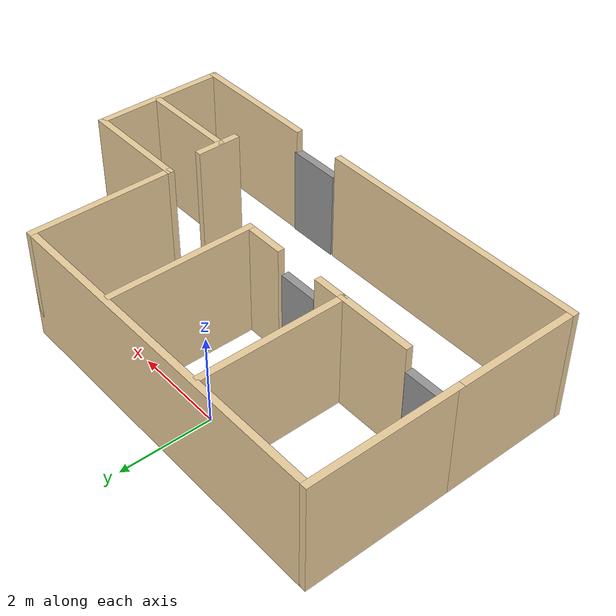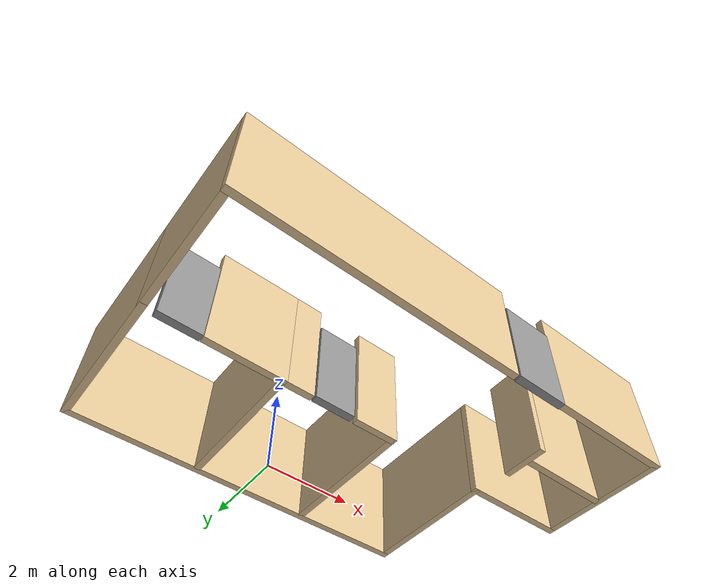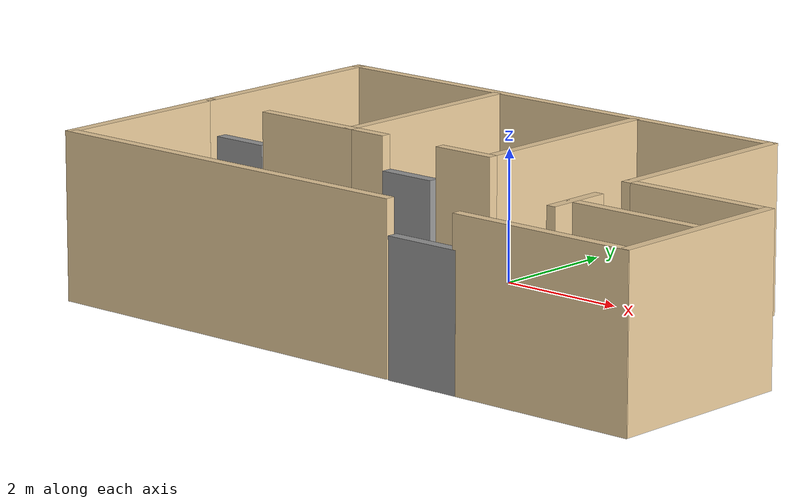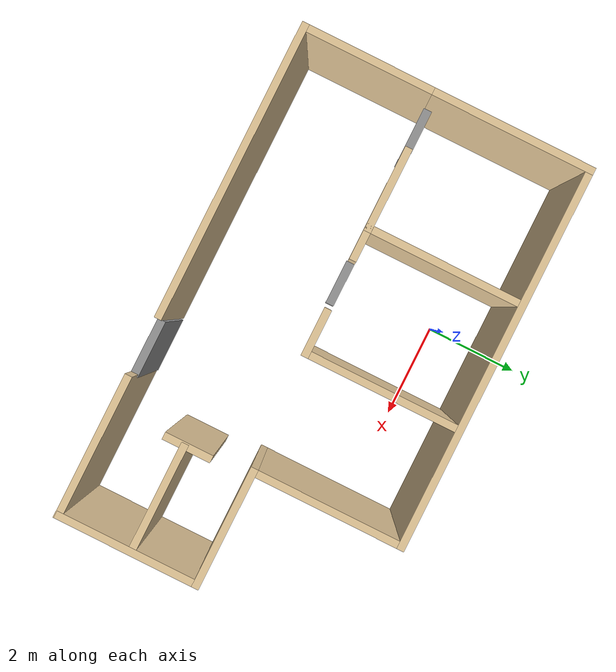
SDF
<?xml version='1.0'?>
<sdf version='1.6'>
  <model name='mybuilding'>
    <pose frame=''>1.17989 -1.95051 0 0 -0 0</pose>
    <link name='Door_0'>
      <collision name='Door_0_Collision'>
        <geometry>
          <box>
            <size>0.9 0.17 2</size>
          </box>
        </geometry>
        <pose frame=''>0 0 1 0 -0 0</pose>
      </collision>
      <visual name='Door_0_Visual'>
        <pose frame=''>0 0 1 0 -0 0</pose>
        <geometry>
          <box>
            <size>0.9 0.17 2</size>
          </box>
        </geometry>
        <material>
          <script>
            <uri>file://media/materials/scripts/gazebo.material</uri>
            <name>Gazebo/Grey</name>
          </script>
        </material>
      </visual>
      <pose frame=''>-4.4187 -0.220499 0 0 -0 0</pose>
    </link>
    <link name='Door_1'>
      <collision name='Door_1_Collision'>
        <geometry>
          <box>
            <size>0.9 0.17 2</size>
          </box>
        </geometry>
        <pose frame=''>0 0 1 0 -0 0</pose>
      </collision>
      <visual name='Door_1_Visual'>
        <pose frame=''>0 0 1 0 -0 0</pose>
        <geometry>
          <box>
            <size>0.9 0.17 2</size>
          </box>
        </geometry>
        <material>
          <script>
            <uri>file://media/materials/scripts/gazebo.material</uri>
            <name>Gazebo/Grey</name>
          </script>
        </material>
      </visual>
      <pose frame=''>-1.13101 -0.236007 0 0 -0 0</pose>
    </link>
    <link name='Door_2'>
      <collision name='Door_2_Collision'>
        <geometry>
          <box>
            <size>1.2 0.17 2</size>
          </box>
        </geometry>
        <pose frame=''>0 0 1 0 -0 0</pose>
      </collision>
      <visual name='Door_2_Visual'>
        <pose frame=''>0 0 1 0 -0 0</pose>
        <geometry>
          <box>
            <size>1.2 0.17 2</size>
          </box>
        </geometry>
        <material>
          <script>
            <uri>file://media/materials/scripts/gazebo.material</uri>
            <name>Gazebo/Grey</name>
          </script>
        </material>
      </visual>
      <pose frame=''>1.62941 -2.98092 0 0 -0 0</pose>
    </link>
    <link name='Wall_1'>
      <collision name='Wall_1_Collision'>
        <geometry>
          <box>
            <size>3.352 0.15 2.5</size>
          </box>
        </geometry>
        <pose frame=''>0 0 1.25 0 -0 0</pose>
      </collision>
      <visual name='Wall_1_Visual'>
        <pose frame=''>0 0 1.25 0 -0 0</pose>
        <geometry>
          <box>
            <size>3.352 0.15 2.5</size>
          </box>
        </geometry>
        <material>
          <script>
            <uri>file://media/materials/scripts/gazebo.material</uri>
            <name>Gazebo/Grey</name>
          </script>
          <ambient>0.921569 0.807843 0.615686 1</ambient>
        </material>
        <meta>
          <layer>0</layer>
        </meta>
      </visual>
      <pose frame=''>-5.0999 1.38951 0 0 -0 1.5708</pose>
    </link>
    <link name='Wall_11'>
      <collision name='Wall_11_Collision'>
        <geometry>
          <box>
            <size>2.5 0.15 2.5</size>
          </box>
        </geometry>
        <pose frame=''>0 0 1.25 0 -0 0</pose>
      </collision>
      <visual name='Wall_11_Visual'>
        <pose frame=''>0 0 1.25 0 -0 0</pose>
        <geometry>
          <box>
            <size>2.5 0.15 2.5</size>
          </box>
        </geometry>
        <material>
          <script>
            <uri>file://media/materials/scripts/gazebo.material</uri>
            <name>Gazebo/Grey</name>
          </script>
          <ambient>0.921569 0.807843 0.615686 1</ambient>
        </material>
        <meta>
          <layer>0</layer>
        </meta>
      </visual>
      <pose frame=''>3.9251 -0.109492 0 0 -0 0</pose>
    </link>
    <link name='Wall_12'>
      <collision name='Wall_12_Collision'>
        <geometry>
          <box>
            <size>3.01551 0.15 2.5</size>
          </box>
        </geometry>
        <pose frame=''>0 0 1.25 0 -0 0</pose>
      </collision>
      <visual name='Wall_12_Visual'>
        <pose frame=''>0 0 1.25 0 -0 0</pose>
        <geometry>
          <box>
            <size>3.01551 0.15 2.5</size>
          </box>
        </geometry>
        <material>
          <script>
            <uri>file://media/materials/scripts/gazebo.material</uri>
            <name>Gazebo/Grey</name>
          </script>
          <ambient>0.921569 0.807843 0.615686 1</ambient>
        </material>
        <meta>
          <layer>0</layer>
        </meta>
      </visual>
      <pose frame=''>5.10011 -1.54225 0 0 0 -1.5708</pose>
    </link>
    <link name='Wall_13'>
      <collision name='Wall_13_Collision'>
        <geometry>
          <box>
            <size>3 0.15 2.5</size>
          </box>
        </geometry>
        <pose frame=''>0 0 1.25 0 -0 0</pose>
      </collision>
      <visual name='Wall_13_Visual'>
        <pose frame=''>0 0 1.25 0 -0 0</pose>
        <geometry>
          <box>
            <size>3 0.15 2.5</size>
          </box>
        </geometry>
        <material>
          <script>
            <uri>file://media/materials/scripts/gazebo.material</uri>
            <name>Gazebo/Grey</name>
          </script>
          <ambient>0.921569 0.807843 0.615686 1</ambient>
        </material>
        <meta>
          <layer>0</layer>
        </meta>
      </visual>
      <pose frame=''>3.6751 -2.99051 0 0 -0 3.14159</pose>
    </link>
    <link name='Wall_15'>
      <collision name='Wall_15_Collision'>
        <geometry>
          <box>
            <size>6.1704 0.15 2.5</size>
          </box>
        </geometry>
        <pose frame=''>0 0 1.25 0 -0 0</pose>
      </collision>
      <visual name='Wall_15_Visual'>
        <pose frame=''>0 0 1.25 0 -0 0</pose>
        <geometry>
          <box>
            <size>6.1704 0.15 2.5</size>
          </box>
        </geometry>
        <material>
          <script>
            <uri>file://media/materials/scripts/gazebo.material</uri>
            <name>Gazebo/Grey</name>
          </script>
          <ambient>0.921569 0.807843 0.615686 1</ambient>
        </material>
        <meta>
          <layer>0</layer>
        </meta>
      </visual>
      <pose frame=''>-2.08989 -2.97999 0 0 -0 3.14143</pose>
    </link>
    <link name='Wall_16'>
      <collision name='Wall_16_Collision'>
        <geometry>
          <box>
            <size>2.917 0.15 2.5</size>
          </box>
        </geometry>
        <pose frame=''>0 0 1.25 0 -0 0</pose>
      </collision>
      <visual name='Wall_16_Visual'>
        <pose frame=''>0 0 1.25 0 -0 0</pose>
        <geometry>
          <box>
            <size>2.917 0.15 2.5</size>
          </box>
        </geometry>
        <material>
          <script>
            <uri>file://media/materials/scripts/gazebo.material</uri>
            <name>Gazebo/Grey</name>
          </script>
          <ambient>0.921569 0.807843 0.615686 1</ambient>
        </material>
        <meta>
          <layer>0</layer>
        </meta>
      </visual>
      <pose frame=''>-5.0999 -1.59549 0 0 -0 1.5708</pose>
    </link>
    <link name='Wall_18'>
      <collision name='Wall_18_Collision'>
        <geometry>
          <box>
            <size>1.75 0.15 2.5</size>
          </box>
        </geometry>
        <pose frame=''>0 0 1.25 0 -0 0</pose>
      </collision>
      <visual name='Wall_18_Visual'>
        <pose frame=''>0 0 1.25 0 -0 0</pose>
        <geometry>
          <box>
            <size>1.75 0.15 2.5</size>
          </box>
        </geometry>
        <material>
          <script>
            <uri>file://media/materials/scripts/gazebo.material</uri>
            <name>Gazebo/Grey</name>
          </script>
          <ambient>0.921569 0.807843 0.615686 1</ambient>
        </material>
        <meta>
          <layer>0</layer>
        </meta>
      </visual>
      <pose frame=''>-3.0799 -0.219492 0 0 -0 3.14159</pose>
    </link>
    <link name='Wall_2'>
      <collision name='Wall_2_Collision'>
        <geometry>
          <box>
            <size>8 0.15 2.5</size>
          </box>
        </geometry>
        <pose frame=''>0 0 1.25 0 -0 0</pose>
      </collision>
      <visual name='Wall_2_Visual'>
        <pose frame=''>0 0 1.25 0 -0 0</pose>
        <geometry>
          <box>
            <size>8 0.15 2.5</size>
          </box>
        </geometry>
        <material>
          <script>
            <uri>file://media/materials/scripts/gazebo.material</uri>
            <name>Gazebo/Grey</name>
          </script>
          <ambient>0.921569 0.807843 0.615686 1</ambient>
        </material>
        <meta>
          <layer>0</layer>
        </meta>
      </visual>
      <pose frame=''>-1.1749 2.99051 0 0 -0 0</pose>
    </link>
    <link name='Wall_24'>
      <collision name='Wall_24_Collision'>
        <geometry>
          <box>
            <size>0.75 0.15 2.5</size>
          </box>
        </geometry>
        <pose frame=''>0 0 1.25 0 -0 0</pose>
      </collision>
      <visual name='Wall_24_Visual'>
        <pose frame=''>0 0 1.25 0 -0 0</pose>
        <geometry>
          <box>
            <size>0.75 0.15 2.5</size>
          </box>
        </geometry>
        <material>
          <script>
            <uri>file://media/materials/scripts/gazebo.material</uri>
            <name>Gazebo/Grey</name>
          </script>
          <ambient>0.921569 0.807843 0.615686 1</ambient>
        </material>
        <meta>
          <layer>0</layer>
        </meta>
      </visual>
      <pose frame=''>-1.97989 -0.219492 0 0 -0 0</pose>
    </link>
    <link name='Wall_27'>
      <collision name='Wall_27_Collision'>
        <geometry>
          <box>
            <size>1 0.15 2.5</size>
          </box>
        </geometry>
        <pose frame=''>0 0 1.25 0 -0 0</pose>
      </collision>
      <visual name='Wall_27_Visual'>
        <pose frame=''>0 0 1.25 0 -0 0</pose>
        <geometry>
          <box>
            <size>1 0.15 2.5</size>
          </box>
        </geometry>
        <material>
          <script>
            <uri>file://media/materials/scripts/gazebo.material</uri>
            <name>Gazebo/Grey</name>
          </script>
          <ambient>0.921569 0.807843 0.615686 1</ambient>
        </material>
        <meta>
          <layer>0</layer>
        </meta>
      </visual>
      <pose frame=''>-0.094895 -0.219492 0 0 -0 0</pose>
    </link>
    <link name='Wall_3'>
      <collision name='Wall_3_Collision'>
        <geometry>
          <box>
            <size>3.25 0.15 2.5</size>
          </box>
        </geometry>
        <pose frame=''>0 0 1.25 0 -0 0</pose>
      </collision>
      <visual name='Wall_3_Visual'>
        <pose frame=''>0 0 1.25 0 -0 0</pose>
        <geometry>
          <box>
            <size>3.25 0.15 2.5</size>
          </box>
        </geometry>
        <material>
          <script>
            <uri>file://media/materials/scripts/gazebo.material</uri>
            <name>Gazebo/Grey</name>
          </script>
          <ambient>0.921569 0.807843 0.615686 1</ambient>
        </material>
        <meta>
          <layer>0</layer>
        </meta>
      </visual>
      <pose frame=''>2.75011 1.44051 0 0 0 -1.5708</pose>
    </link>
    <link name='Wall_31'>
      <collision name='Wall_31_Collision'>
        <geometry>
          <box>
            <size>2.25 0.15 2.5</size>
          </box>
        </geometry>
        <pose frame=''>0 0 1.25 0 -0 0</pose>
      </collision>
      <visual name='Wall_31_Visual'>
        <pose frame=''>0 0 1.25 0 -0 0</pose>
        <geometry>
          <box>
            <size>2.25 0.15 2.5</size>
          </box>
        </geometry>
        <material>
          <script>
            <uri>file://media/materials/scripts/gazebo.material</uri>
            <name>Gazebo/Grey</name>
          </script>
          <ambient>0.921569 0.807843 0.615686 1</ambient>
        </material>
        <meta>
          <layer>0</layer>
        </meta>
      </visual>
      <pose frame=''>3.96657 -1.47664 0 0 -0 0</pose>
    </link>
    <link name='Wall_33'>
      <collision name='Wall_33_Collision'>
        <geometry>
          <box>
            <size>1 0.15 2.5</size>
          </box>
        </geometry>
        <pose frame=''>0 0 1.25 0 -0 0</pose>
      </collision>
      <visual name='Wall_33_Visual'>
        <pose frame=''>0 0 1.25 0 -0 0</pose>
        <geometry>
          <box>
            <size>1 0.15 2.5</size>
          </box>
        </geometry>
        <material>
          <script>
            <uri>file://media/materials/scripts/gazebo.material</uri>
            <name>Gazebo/Grey</name>
          </script>
          <ambient>0.921569 0.807843 0.615686 1</ambient>
        </material>
        <meta>
          <layer>0</layer>
        </meta>
      </visual>
      <pose frame=''>2.88555 -1.40539 0 0 0 -1.5708</pose>
    </link>
    <link name='Wall_7'>
      <collision name='Wall_7_Collision'>
        <geometry>
          <box>
            <size>3.25 0.15 2.5</size>
          </box>
        </geometry>
        <pose frame=''>0 0 1.25 0 -0 0</pose>
      </collision>
      <visual name='Wall_7_Visual'>
        <pose frame=''>0 0 1.25 0 -0 0</pose>
        <geometry>
          <box>
            <size>3.25 0.15 2.5</size>
          </box>
        </geometry>
        <material>
          <script>
            <uri>file://media/materials/scripts/gazebo.material</uri>
            <name>Gazebo/Grey</name>
          </script>
          <ambient>0.921569 0.807843 0.615686 1</ambient>
        </material>
        <meta>
          <layer>0</layer>
        </meta>
      </visual>
      <pose frame=''>-2.27989 1.33051 0 0 0 -1.5708</pose>
    </link>
    <link name='Wall_9'>
      <collision name='Wall_9_Collision'>
        <geometry>
          <box>
            <size>3.25 0.15 2.5</size>
          </box>
        </geometry>
        <pose frame=''>0 0 1.25 0 -0 0</pose>
      </collision>
      <visual name='Wall_9_Visual'>
        <pose frame=''>0 0 1.25 0 -0 0</pose>
        <geometry>
          <box>
            <size>3.25 0.15 2.5</size>
          </box>
        </geometry>
        <material>
          <script>
            <uri>file://media/materials/scripts/gazebo.material</uri>
            <name>Gazebo/Grey</name>
          </script>
          <ambient>0.921569 0.807843 0.615686 1</ambient>
        </material>
        <meta>
          <layer>0</layer>
        </meta>
      </visual>
      <pose frame=''>0.330105 1.33051 0 0 0 -1.5708</pose>
    </link>
    <static>1</static>
  </model>
</sdf>
